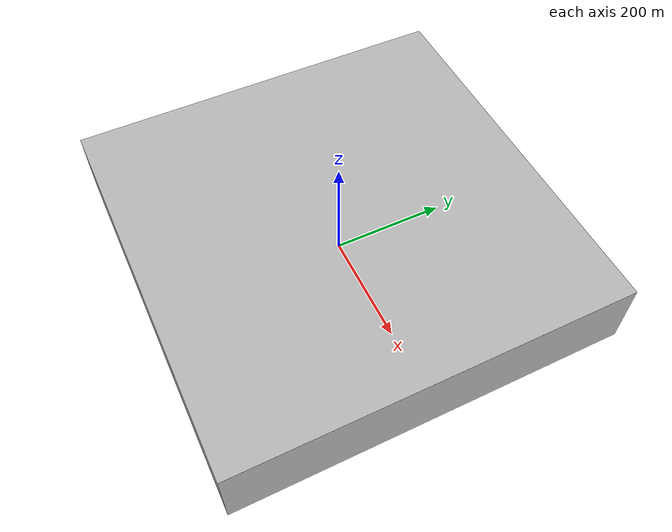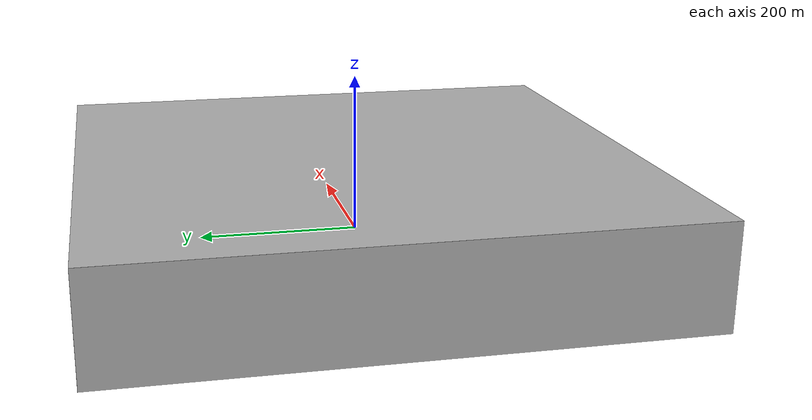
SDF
<sdf version="1.4">
 <world name="compact_underwater_terrain">
  <include><uri>model://sun</uri></include>
  <model name="compact_ocean_box">
   <static>true</static>
   <link name="link">
    <visual name="ground">
     <cast_shadows>false</cast_shadows>
     <pose>0 0 -25.2 0 0 0</pose>
     <geometry><box><size>700 700 .1</size></box></geometry>
     <material>
      <script>
       <uri>file://Media/materials/scripts/sand.material</uri>
       <name>UUVSimulator/SandAndStones</name>
      </script>
     </material>
    </visual>
    <collision name="ground">
     <pose>0 0 -25 0 0 0</pose>
     <geometry><box><size>700 700 .1</size></box></geometry>
    </collision>
    <visual name="surface">
     <cast_shadows>false</cast_shadows>
     <pose>0 0 100 0 0 0</pose>
     <geometry><box><size>700 700 .1</size></box></geometry>
     <material>
      <script><uri>file://Media/materials/scripts/water.material</uri><name>UUVSimulator/ClearWater</name></script>
     </material>
    </visual>
    <visual name="main_water_body">
     <cast_shadows>false</cast_shadows>
     <pose>0 0 35 0 0 0</pose>
     <geometry><box><size>700 700 130</size></box></geometry>
     <material>
      <script><uri>file://Media/materials/scripts/water.material</uri><name>UUVSimulator/ClearWater</name></script>
     </material>
    </visual>
    <visual name="north">
     <cast_shadows>false</cast_shadows>
     <pose>350 0 35 0 0 0</pose>
     <geometry><box><size>.1 700 130</size></box></geometry>
     <material>
      <script>
       <uri>file://Media/materials/scripts/water.material</uri>
       <name>UUVSimulator/ClearSeaWall</name>
      </script>
     </material>
    </visual>
    <visual name="south">
     <cast_shadows>false</cast_shadows>
     <pose>-350 0 35 0 0 0</pose>
     <geometry><box><size>.1 700 130</size></box></geometry>
     <material>
      <script>
       <uri>file://Media/materials/scripts/water.material</uri>
       <name>UUVSimulator/ClearSeaWall</name>
      </script>
     </material>
    </visual>
    <visual name="east">
     <cast_shadows>false</cast_shadows>
     <pose>0 -350 35 0 0 0</pose>
     <geometry><box><size>700 .1 130</size></box></geometry>
     <material>
      <script>
       <uri>file://Media/materials/scripts/water.material</uri>
       <name>UUVSimulator/ClearSeaWall</name>
      </script>
     </material>
    </visual>
    <visual name="west">
     <cast_shadows>false</cast_shadows>
     <pose>0 350 35 0 0 0</pose>
     <geometry><box><size>700 .1 130</size></box></geometry>
     <material>
      <script>
       <uri>file://Media/materials/scripts/water.material</uri>
       <name>UUVSimulator/ClearSeaWall</name>
      </script>
     </material>
    </visual>
   </link>
  </model>
  <model name="moving_sphere_obstacle_1">
   <static>false</static>
   <pose>-5.30485650955445 2.74586934911605 2 0 0 0</pose>
   <plugin name="sphere_1_oscillator" filename="libuuv_oscillating_obstacle_plugin.so">
    <motion>circle</motion>
    <axis>1 0 0</axis>
    <amplitude>1.9</amplitude>
    <speed>0.8</speed>
    <secondary_axis>0 1 0</secondary_axis>
    <secondary_amplitude>1.9</secondary_amplitude>
    <secondary_phase>0.0</secondary_phase>
   </plugin>
   <link name="link">
    <gravity>false</gravity>
    <kinematic>true</kinematic>
    <inertial>
     <mass>50</mass>
     <inertia><ixx>2.0</ixx><ixy>0.0</ixy><ixz>0.0</ixz><iyy>2.0</iyy><iyz>0.0</iyz><izz>2.0</izz></inertia>
    </inertial>
    <collision name="collision"><geometry><sphere><radius>1.8</radius></sphere></geometry></collision>
    <visual name="visual">
     <geometry><sphere><radius>1.8</radius></sphere></geometry>
     <material><ambient>0.8 0.1 0.1 1</ambient><diffuse>0.8 0.1 0.1 1</diffuse></material>
    </visual>
   </link>
  </model>
  <model name="moving_sphere_obstacle_2">
   <static>false</static>
   <pose>16.2056456617033 23.114221295412 -14.3338452718954 0 0 0</pose>
   <plugin name="sphere_2_oscillator" filename="libuuv_oscillating_obstacle_plugin.so">
    <motion>circle</motion>
    <axis>-1 0 0</axis>
    <amplitude>1.9</amplitude>
    <speed>0.8</speed>
    <secondary_axis>0 1 0</secondary_axis>
    <secondary_amplitude>1.9</secondary_amplitude>
    <secondary_phase>0.0</secondary_phase>
   </plugin>
   <link name="link">
    <gravity>false</gravity>
    <kinematic>true</kinematic>
    <inertial>
     <mass>50</mass>
     <inertia><ixx>2.0</ixx><ixy>0.0</ixy><ixz>0.0</ixz><iyy>2.0</iyy><iyz>0.0</iyz><izz>2.0</izz></inertia>
    </inertial>
    <collision name="collision"><geometry><sphere><radius>1.8</radius></sphere></geometry></collision>
    <visual name="visual">
     <geometry><sphere><radius>1.8</radius></sphere></geometry>
     <material><ambient>0.1 0.8 0.1 1</ambient><diffuse>0.1 0.8 0.1 1</diffuse></material>
    </visual>
   </link>
  </model>
  <plugin name="underwater_current_plugin" filename="libuuv_underwater_current_ros_plugin.so">
   <namespace>hydrodynamics</namespace>
   <constant_current>
    <topic>current_velocity</topic>
    <velocity><mean>0</mean><min>0</min><max>1</max><mu>0.0</mu><noiseAmp>0.0</noiseAmp></velocity>
    <horizontal_angle>
     <mean>0</mean>
     <min>-3.141592653589793238</min>
     <max>3.141592653589793238</max>
     <mu>0.0</mu>
     <noiseAmp>0.0</noiseAmp>
    </horizontal_angle>
    <vertical_angle>
     <mean>0</mean>
     <min>-3.141592653589793238</min>
     <max>3.141592653589793238</max>
     <mu>0.0</mu>
     <noiseAmp>0.0</noiseAmp>
    </vertical_angle>
   </constant_current>
  </plugin>
  <plugin name="sc_interface" filename="libuuv_sc_ros_interface_plugin.so"/>
 </world>
</sdf>
